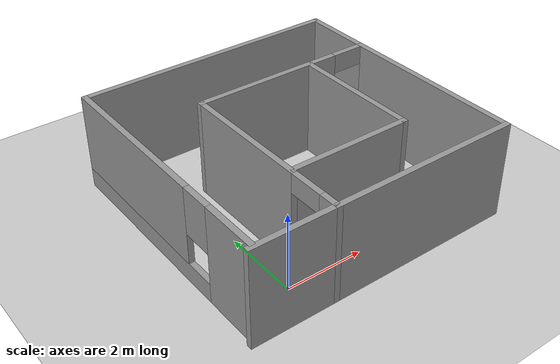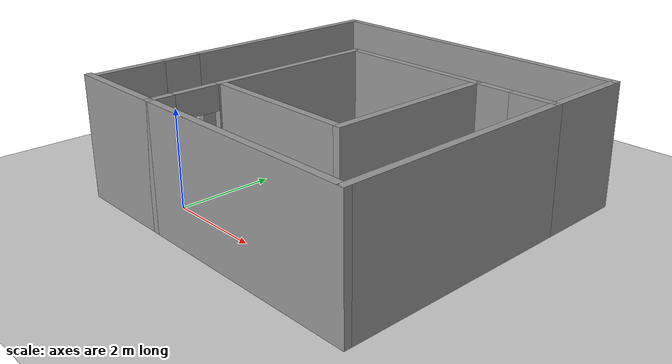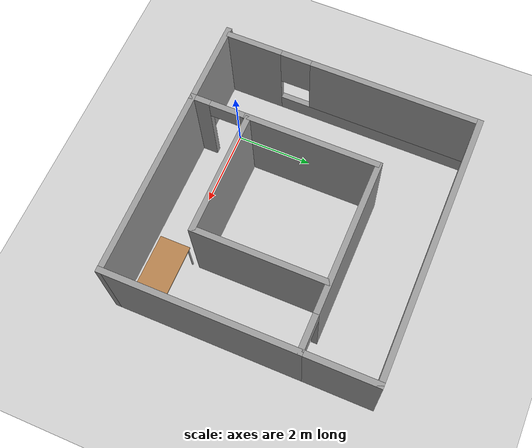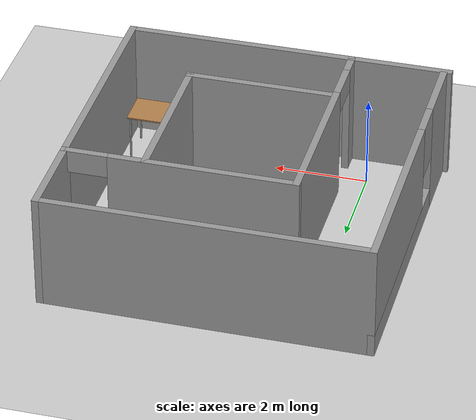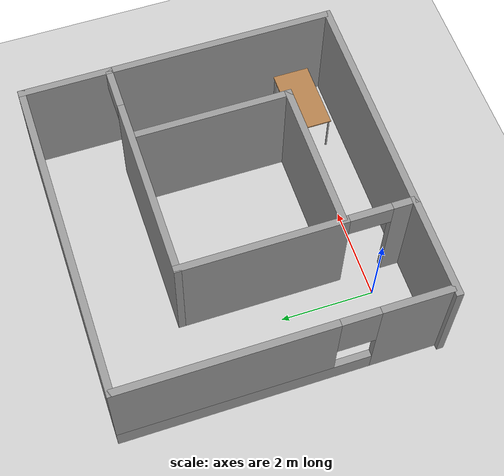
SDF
<sdf version="1.6">
 <world name="default">
  <light name="sun" type="directional">
   <pose>0 0 10 0 -0 0</pose>
   <diffuse>0.8 0.8 0.8 1</diffuse>
   <specular>0.2 0.2 0.2 1</specular>
   <attenuation>
    <range>1000</range>
    <constant>0.9</constant>
    <linear>0.01</linear>
    <quadratic>0.001</quadratic>
   </attenuation>
   <direction>-0.5 0.1 -0.9</direction>
  </light>
  <model name="ground_plane">
   <static>1</static>
   <link name="link">
    <collision name="collision">
     <geometry><plane><normal>0 0 1</normal><size>100 100</size></plane></geometry>
     <surface>
      <contact><collide_bitmask>65535</collide_bitmask></contact>
      <friction><ode><mu>100</mu><mu2>50</mu2></ode></friction>
     </surface>
    </collision>
    <visual name="visual">
     <cast_shadows>0</cast_shadows>
     <geometry><plane><normal>0 0 1</normal><size>100 100</size></plane></geometry>
     <material>
      <script><uri>file://media/materials/scripts/gazebo.material</uri><name>Gazebo/Grey</name></script>
     </material>
    </visual>
   </link>
  </model>
  <gravity>0 0 -9.8</gravity>
  <magnetic_field>6e-06 2.3e-05 -4.2e-05</magnetic_field>
  <atmosphere type="adiabatic"/>
  <physics name="default_physics" default="0" type="ode">
   <max_step_size>0.001</max_step_size>
   <real_time_factor>1</real_time_factor>
   <real_time_update_rate>1000</real_time_update_rate>
  </physics>
  <scene><ambient>0.4 0.4 0.4 1</ambient><background>0.7 0.7 0.7 1</background><shadows>1</shadows></scene>
  <spherical_coordinates>
   <surface_model>EARTH_WGS84</surface_model>
   <latitude_deg>0</latitude_deg>
   <longitude_deg>0</longitude_deg>
   <elevation>0</elevation>
   <heading_deg>0</heading_deg>
  </spherical_coordinates>
  <model name="2">
   <pose>1.94686 2.50117 0 0 -0 0</pose>
   <link name="Wall_10">
    <collision name="Wall_10_Collision">
     <geometry><box><size>5 0.15 2.5</size></box></geometry>
     <pose>0 0 1.25 0 -0 0</pose>
    </collision>
    <visual name="Wall_10_Visual">
     <pose>0 0 1.25 0 -0 0</pose>
     <geometry><box><size>5 0.15 2.5</size></box></geometry>
     <material>
      <script><uri>file://media/materials/scripts/gazebo.material</uri><name>Gazebo/Grey</name></script>
      <ambient>1 1 1 1</ambient>
     </material>
     <meta><layer>0</layer></meta>
    </visual>
    <pose>1.05 -3.35 0 0 -0 3.14159</pose>
   </link>
   <link name="Wall_12">
    <collision name="Wall_12_Collision">
     <geometry><box><size>3.25 0.15 2.5</size></box></geometry>
     <pose>0 0 1.25 0 -0 0</pose>
    </collision>
    <visual name="Wall_12_Visual">
     <pose>0 0 1.25 0 -0 0</pose>
     <geometry><box><size>3.25 0.15 2.5</size></box></geometry>
     <material>
      <script><uri>file://media/materials/scripts/gazebo.material</uri><name>Gazebo/Grey</name></script>
      <ambient>1 1 1 1</ambient>
     </material>
     <meta><layer>0</layer></meta>
    </visual>
    <pose>0.231188 -1.86183 0 0 -0 0</pose>
   </link>
   <link name="Wall_13">
    <collision name="Wall_13_Collision">
     <geometry><box><size>3.5 0.15 2.5</size></box></geometry>
     <pose>0 0 1.25 0 -0 0</pose>
    </collision>
    <visual name="Wall_13_Visual">
     <pose>0 0 1.25 0 -0 0</pose>
     <geometry><box><size>3.5 0.15 2.5</size></box></geometry>
     <material>
      <script><uri>file://media/materials/scripts/gazebo.material</uri><name>Gazebo/Grey</name></script>
      <ambient>1 1 1 1</ambient>
     </material>
     <meta><layer>0</layer></meta>
    </visual>
    <pose>1.78119 -0.186834 0 0 -0 1.5708</pose>
   </link>
   <link name="Wall_2">
    <pose>-3.375 0.05 0 0 -0 1.5708</pose>
    <visual name="Wall_2_Visual_0">
     <pose>-2.63234 0 1.25 0 -0 0</pose>
     <geometry><box><size>1.48531 0.15 2.5</size></box></geometry>
     <material>
      <script><uri>file://media/materials/scripts/gazebo.material</uri><name>Gazebo/Grey</name></script>
      <ambient>1 1 1 1</ambient>
     </material>
     <meta><layer>0</layer></meta>
    </visual>
    <collision name="Wall_2_Collision_0">
     <geometry><box><size>1.48531 0.15 2.5</size></box></geometry>
     <pose>-2.63234 0 1.25 0 -0 0</pose>
    </collision>
    <visual name="Wall_2_Visual_1">
     <pose>0.742655 0 0.25 0 -0 0</pose>
     <geometry><box><size>5.26469 0.15 0.5</size></box></geometry>
     <material>
      <script><uri>file://media/materials/scripts/gazebo.material</uri><name>Gazebo/Grey</name></script>
      <ambient>1 1 1 1</ambient>
     </material>
     <meta><layer>0</layer></meta>
    </visual>
    <collision name="Wall_2_Collision_1">
     <geometry><box><size>5.26469 0.15 0.5</size></box></geometry>
     <pose>0.742655 0 0.25 0 -0 0</pose>
    </collision>
    <visual name="Wall_2_Visual_2">
     <pose>1.14265 0 1.5 0 -0 0</pose>
     <geometry><box><size>4.46469 0.15 2</size></box></geometry>
     <material>
      <script><uri>file://media/materials/scripts/gazebo.material</uri><name>Gazebo/Grey</name></script>
      <ambient>1 1 1 1</ambient>
     </material>
     <meta><layer>0</layer></meta>
    </visual>
    <collision name="Wall_2_Collision_2">
     <geometry><box><size>4.46469 0.15 2</size></box></geometry>
     <pose>1.14265 0 1.5 0 -0 0</pose>
    </collision>
    <visual name="Wall_2_Visual_3">
     <pose>-1.48969 0 1.9 0 -0 0</pose>
     <geometry><box><size>0.8 0.15 1.2</size></box></geometry>
     <material>
      <script><uri>file://media/materials/scripts/gazebo.material</uri><name>Gazebo/Grey</name></script>
      <ambient>1 1 1 1</ambient>
     </material>
     <meta><layer>0</layer></meta>
    </visual>
    <collision name="Wall_2_Collision_3">
     <geometry><box><size>0.8 0.15 1.2</size></box></geometry>
     <pose>-1.48969 0 1.9 0 -0 0</pose>
    </collision>
   </link>
   <link name="Wall_3">
    <collision name="Wall_3_Collision">
     <geometry><box><size>7 0.15 2.5</size></box></geometry>
     <pose>0 0 1.25 0 -0 0</pose>
    </collision>
    <visual name="Wall_3_Visual">
     <pose>0 0 1.25 0 -0 0</pose>
     <geometry><box><size>7 0.15 2.5</size></box></geometry>
     <material>
      <script><uri>file://media/materials/scripts/gazebo.material</uri><name>Gazebo/Grey</name></script>
      <ambient>1 1 1 1</ambient>
     </material>
     <meta><layer>0</layer></meta>
    </visual>
    <pose>0.05 3.35 0 0 -0 0</pose>
   </link>
   <link name="Wall_4">
    <collision name="Wall_4_Collision">
     <geometry><box><size>2 0.15 2.5</size></box></geometry>
     <pose>0 0 1.25 0 -0 0</pose>
    </collision>
    <visual name="Wall_4_Visual">
     <pose>0 0 1.25 0 -0 0</pose>
     <geometry><box><size>2 0.15 2.5</size></box></geometry>
     <material>
      <script><uri>file://media/materials/scripts/gazebo.material</uri><name>Gazebo/Grey</name></script>
      <ambient>1 1 1 1</ambient>
     </material>
     <meta><layer>0</layer></meta>
    </visual>
    <pose>3.475 2.425 0 0 0 -1.5708</pose>
   </link>
   <link name="Wall_5">
    <pose>1.05 1.5 0 0 -0 3.14159</pose>
    <visual name="Wall_5_Visual_0">
     <pose>-2.45409 0 1.25 0 -0 0</pose>
     <geometry><box><size>0.091825 0.15 2.5</size></box></geometry>
     <material>
      <script><uri>file://media/materials/scripts/gazebo.material</uri><name>Gazebo/Grey</name></script>
      <ambient>1 1 1 1</ambient>
     </material>
     <meta><layer>0</layer></meta>
    </visual>
    <collision name="Wall_5_Collision_0">
     <geometry><box><size>0.091825 0.15 2.5</size></box></geometry>
     <pose>-2.45409 0 1.25 0 -0 0</pose>
    </collision>
    <visual name="Wall_5_Visual_1">
     <pose>0.495912 0 1.25 0 -0 0</pose>
     <geometry><box><size>4.00817 0.15 2.5</size></box></geometry>
     <material>
      <script><uri>file://media/materials/scripts/gazebo.material</uri><name>Gazebo/Grey</name></script>
      <ambient>1 1 1 1</ambient>
     </material>
     <meta><layer>0</layer></meta>
    </visual>
    <collision name="Wall_5_Collision_1">
     <geometry><box><size>4.00817 0.15 2.5</size></box></geometry>
     <pose>0.495912 0 1.25 0 -0 0</pose>
    </collision>
    <visual name="Wall_5_Visual_2">
     <pose>-1.95817 0 2.25 0 -0 0</pose>
     <geometry><box><size>0.9 0.15 0.5</size></box></geometry>
     <material>
      <script><uri>file://media/materials/scripts/gazebo.material</uri><name>Gazebo/Grey</name></script>
      <ambient>1 1 1 1</ambient>
     </material>
     <meta><layer>0</layer></meta>
    </visual>
    <collision name="Wall_5_Collision_2">
     <geometry><box><size>0.9 0.15 0.5</size></box></geometry>
     <pose>-1.95817 0 2.25 0 -0 0</pose>
    </collision>
   </link>
   <link name="Wall_6">
    <pose>-1.375 -0.925 0 0 0 -1.5708</pose>
    <visual name="Wall_6_Visual_0">
     <pose>-0.725153 0 1.25 0 -0 0</pose>
     <geometry><box><size>3.54969 0.15 2.5</size></box></geometry>
     <material>
      <script><uri>file://media/materials/scripts/gazebo.material</uri><name>Gazebo/Grey</name></script>
      <ambient>1 1 1 1</ambient>
     </material>
     <meta><layer>0</layer></meta>
    </visual>
    <collision name="Wall_6_Collision_0">
     <geometry><box><size>3.54969 0.15 2.5</size></box></geometry>
     <pose>-0.725153 0 1.25 0 -0 0</pose>
    </collision>
    <visual name="Wall_6_Visual_1">
     <pose>2.22485 0 1.25 0 -0 0</pose>
     <geometry><box><size>0.550305 0.15 2.5</size></box></geometry>
     <material>
      <script><uri>file://media/materials/scripts/gazebo.material</uri><name>Gazebo/Grey</name></script>
      <ambient>1 1 1 1</ambient>
     </material>
     <meta><layer>0</layer></meta>
    </visual>
    <collision name="Wall_6_Collision_1">
     <geometry><box><size>0.550305 0.15 2.5</size></box></geometry>
     <pose>2.22485 0 1.25 0 -0 0</pose>
    </collision>
    <visual name="Wall_6_Visual_2">
     <pose>1.4997 0 2.25 0 -0 0</pose>
     <geometry><box><size>0.9 0.15 0.5</size></box></geometry>
     <material>
      <script><uri>file://media/materials/scripts/gazebo.material</uri><name>Gazebo/Grey</name></script>
      <ambient>1 1 1 1</ambient>
     </material>
     <meta><layer>0</layer></meta>
    </visual>
    <collision name="Wall_6_Collision_2">
     <geometry><box><size>0.9 0.15 0.5</size></box></geometry>
     <pose>1.4997 0 2.25 0 -0 0</pose>
    </collision>
   </link>
   <link name="Wall_7">
    <collision name="Wall_7_Collision">
     <geometry><box><size>2.25 0.15 2.5</size></box></geometry>
     <pose>0 0 1.25 0 -0 0</pose>
    </collision>
    <visual name="Wall_7_Visual">
     <pose>0 0 1.25 0 -0 0</pose>
     <geometry><box><size>2.25 0.15 2.5</size></box></geometry>
     <material>
      <script><uri>file://media/materials/scripts/gazebo.material</uri><name>Gazebo/Grey</name></script>
      <ambient>1 1 1 1</ambient>
     </material>
     <meta><layer>0</layer></meta>
    </visual>
    <pose>-2.425 -3.35 0 0 -0 3.14159</pose>
   </link>
   <link name="Wall_9">
    <collision name="Wall_9_Collision">
     <geometry><box><size>5 0.15 2.5</size></box></geometry>
     <pose>0 0 1.25 0 -0 0</pose>
    </collision>
    <visual name="Wall_9_Visual">
     <pose>0 0 1.25 0 -0 0</pose>
     <geometry><box><size>5 0.15 2.5</size></box></geometry>
     <material>
      <script><uri>file://media/materials/scripts/gazebo.material</uri><name>Gazebo/Grey</name></script>
      <ambient>1 1 1 1</ambient>
     </material>
     <meta><layer>0</layer></meta>
    </visual>
    <pose>3.475 -0.925 0 0 0 -1.5708</pose>
   </link>
   <static>1</static>
  </model>
  <model name="table">
   <static>1</static>
   <link name="link">
    <collision name="surface">
     <pose>0 0 1 0 -0 0</pose>
     <geometry><box><size>1.5 0.8 0.03</size></box></geometry>
     <surface><friction><ode><mu>0.6</mu><mu2>0.6</mu2></ode></friction></surface>
    </collision>
    <visual name="visual1">
     <pose>0 0 1 0 -0 0</pose>
     <geometry><box><size>1.5 0.8 0.03</size></box></geometry>
     <material>
      <script><uri>file://media/materials/scripts/gazebo.material</uri><name>Gazebo/Wood</name></script>
     </material>
    </visual>
    <collision name="front_left_leg">
     <pose>0.68 0.38 0.5 0 -0 0</pose>
     <geometry><cylinder><radius>0.02</radius><length>1</length></cylinder></geometry>
    </collision>
    <visual name="front_left_leg">
     <pose>0.68 0.38 0.5 0 -0 0</pose>
     <geometry><cylinder><radius>0.02</radius><length>1</length></cylinder></geometry>
     <material>
      <script><uri>file://media/materials/scripts/gazebo.material</uri><name>Gazebo/Grey</name></script>
     </material>
    </visual>
    <collision name="front_right_leg">
     <pose>0.68 -0.38 0.5 0 -0 0</pose>
     <geometry><cylinder><radius>0.02</radius><length>1</length></cylinder></geometry>
    </collision>
    <visual name="front_right_leg">
     <pose>0.68 -0.38 0.5 0 -0 0</pose>
     <geometry><cylinder><radius>0.02</radius><length>1</length></cylinder></geometry>
     <material>
      <script><uri>file://media/materials/scripts/gazebo.material</uri><name>Gazebo/Grey</name></script>
     </material>
    </visual>
    <collision name="back_right_leg">
     <pose>-0.68 -0.38 0.5 0 -0 0</pose>
     <geometry><cylinder><radius>0.02</radius><length>1</length></cylinder></geometry>
    </collision>
    <visual name="back_right_leg">
     <pose>-0.68 -0.38 0.5 0 -0 0</pose>
     <geometry><cylinder><radius>0.02</radius><length>1</length></cylinder></geometry>
     <material>
      <script><uri>file://media/materials/scripts/gazebo.material</uri><name>Gazebo/Grey</name></script>
     </material>
    </visual>
    <collision name="back_left_leg">
     <pose>-0.68 0.38 0.5 0 -0 0</pose>
     <geometry><cylinder><radius>0.02</radius><length>1</length></cylinder></geometry>
    </collision>
    <visual name="back_left_leg">
     <pose>-0.68 0.38 0.5 0 -0 0</pose>
     <geometry><cylinder><radius>0.02</radius><length>1</length></cylinder></geometry>
     <material>
      <script><uri>file://media/materials/scripts/gazebo.material</uri><name>Gazebo/Grey</name></script>
     </material>
    </visual>
   </link>
   <pose>4.46734 -0.00313 0 0 -0 0</pose>
  </model>
 </world>
</sdf>
